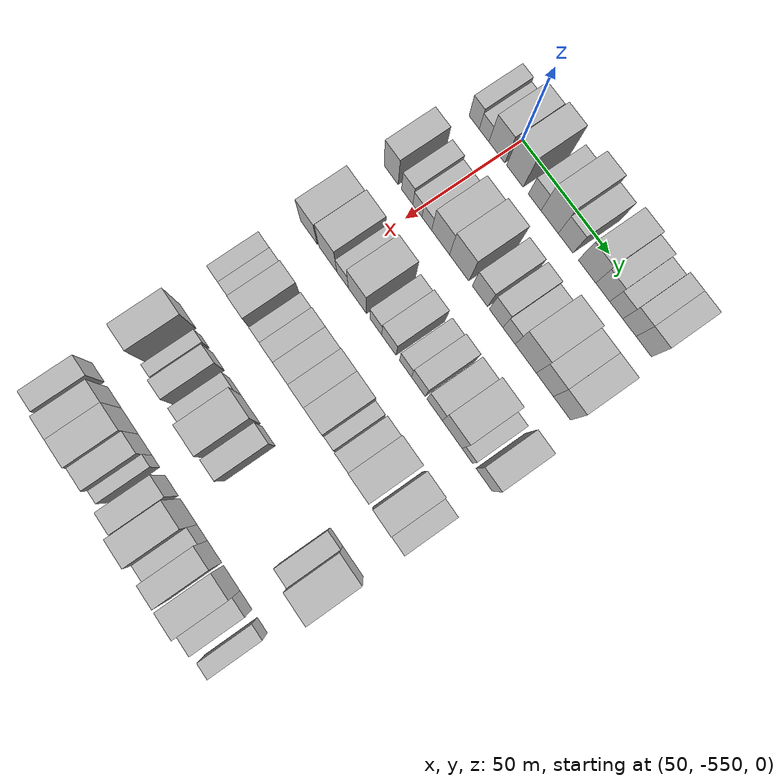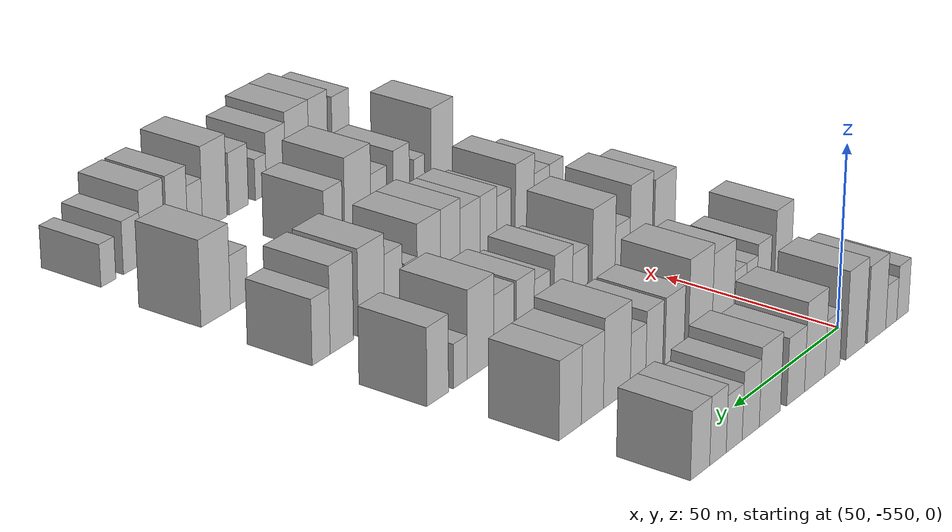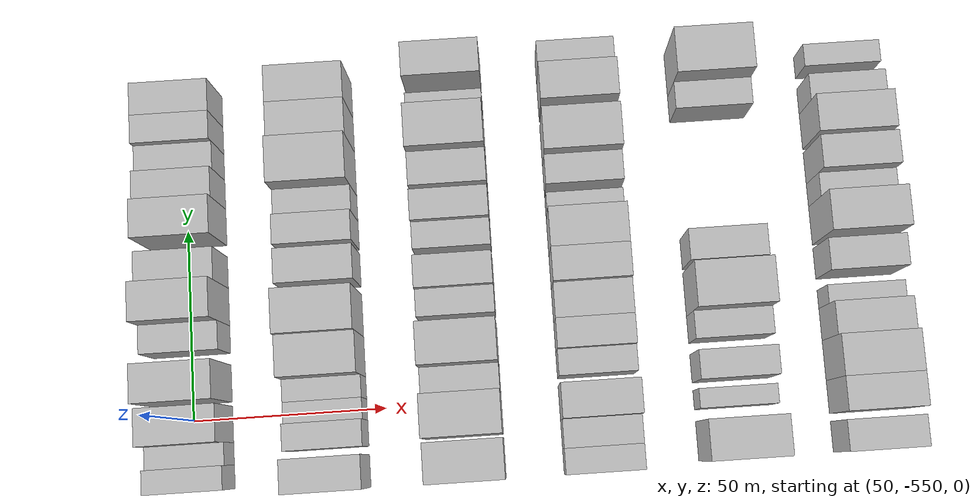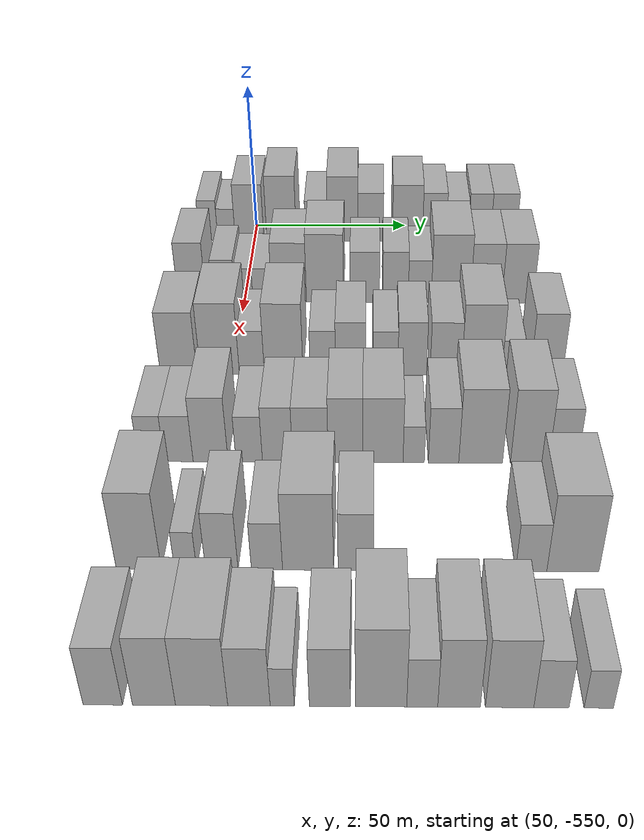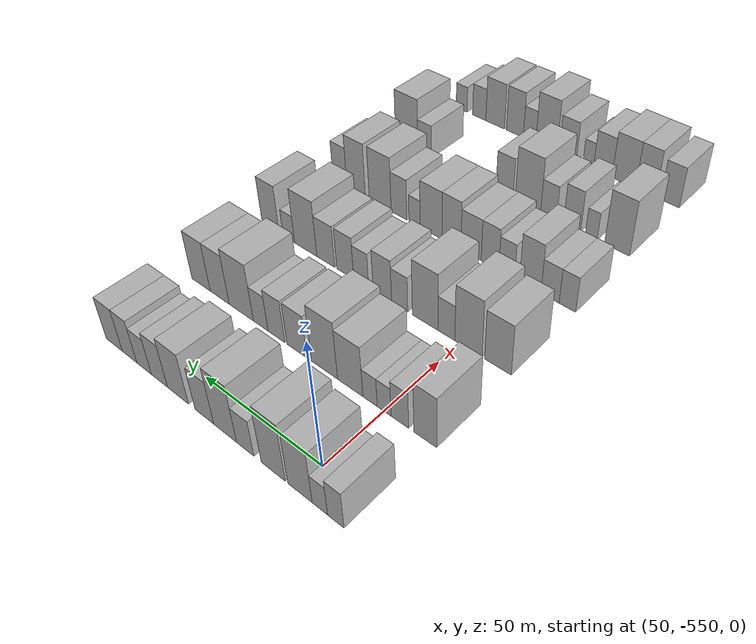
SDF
<sdf version="1.6">
 <world name="default">
  <model name="building_1">
   <static>1</static>
   <pose>50.0000 -564.9741 0 0.000000 0.000000 0.000000</pose>
   <link name="link">
    <pose>0 0 7.50 0 0 0</pose>
    <collision name="collision"><geometry><box><size>20.0000 6.0518 15.0000</size></box></geometry></collision>
    <visual name="visual">
     <cast_shadows>0</cast_shadows>
     <geometry><box><size>20.0000 6.0518 15.0000</size></box></geometry>
     <material>
      <script>
       <uri>model://HANNAS_wall/materials/scripts</uri>
       <uri>model://HANNAS_wall/materials/textures</uri>
       <name>vrc/HANNAS_wall</name>
      </script>
     </material>
    </visual>
   </link>
  </model>
  <model name="building_2">
   <static>1</static>
   <pose>50.0000 -559.0703 0 0.000000 0.000000 0.000000</pose>
   <link name="link">
    <pose>0 0 6.00 0 0 0</pose>
    <collision name="collision"><geometry><box><size>20.0000 5.7558 12.0000</size></box></geometry></collision>
    <visual name="visual">
     <cast_shadows>0</cast_shadows>
     <geometry><box><size>20.0000 5.7558 12.0000</size></box></geometry>
     <material>
      <script>
       <uri>model://HANNAS_wall/materials/scripts</uri>
       <uri>model://HANNAS_wall/materials/textures</uri>
       <name>vrc/HANNAS_wall</name>
      </script>
     </material>
    </visual>
   </link>
  </model>
  <model name="building_3">
   <static>1</static>
   <pose>50.0000 -551.4871 0 0.000000 0.000000 0.000000</pose>
   <link name="link">
    <pose>0 0 10.50 0 0 0</pose>
    <collision name="collision"><geometry><box><size>20.0000 9.4108 21.0000</size></box></geometry></collision>
    <visual name="visual">
     <cast_shadows>0</cast_shadows>
     <geometry><box><size>20.0000 9.4108 21.0000</size></box></geometry>
     <material>
      <script>
       <uri>model://HANNAS_wall/materials/scripts</uri>
       <uri>model://HANNAS_wall/materials/textures</uri>
       <name>vrc/HANNAS_wall</name>
      </script>
     </material>
    </visual>
   </link>
  </model>
  <model name="building_4">
   <static>1</static>
   <pose>50.0000 -540.9198 0 0.000000 0.000000 0.000000</pose>
   <link name="link">
    <pose>0 0 12.00 0 0 0</pose>
    <collision name="collision"><geometry><box><size>20.0000 9.7238 24.0000</size></box></geometry></collision>
    <visual name="visual">
     <cast_shadows>0</cast_shadows>
     <geometry><box><size>20.0000 9.7238 24.0000</size></box></geometry>
     <material>
      <script>
       <uri>model://HANNAS_wall/materials/scripts</uri>
       <uri>model://HANNAS_wall/materials/textures</uri>
       <name>vrc/HANNAS_wall</name>
      </script>
     </material>
    </visual>
   </link>
  </model>
  <model name="building_5">
   <static>1</static>
   <pose>50.0000 -529.4019 0 0.000000 0.000000 0.000000</pose>
   <link name="link">
    <pose>0 0 7.50 0 0 0</pose>
    <collision name="collision"><geometry><box><size>20.0000 7.3119 15.0000</size></box></geometry></collision>
    <visual name="visual">
     <cast_shadows>0</cast_shadows>
     <geometry><box><size>20.0000 7.3119 15.0000</size></box></geometry>
     <material>
      <script>
       <uri>model://HANNAS_wall/materials/scripts</uri>
       <uri>model://HANNAS_wall/materials/textures</uri>
       <name>vrc/HANNAS_wall</name>
      </script>
     </material>
    </visual>
   </link>
  </model>
  <model name="building_6">
   <static>1</static>
   <pose>50.0000 -520.7730 0 0.000000 0.000000 0.000000</pose>
   <link name="link">
    <pose>0 0 12.00 0 0 0</pose>
    <collision name="collision"><geometry><box><size>20.0000 9.9459 24.0000</size></box></geometry></collision>
    <visual name="visual">
     <cast_shadows>0</cast_shadows>
     <geometry><box><size>20.0000 9.9459 24.0000</size></box></geometry>
     <material>
      <script>
       <uri>model://HANNAS_wall/materials/scripts</uri>
       <uri>model://HANNAS_wall/materials/textures</uri>
       <name>vrc/HANNAS_wall</name>
      </script>
     </material>
    </visual>
   </link>
  </model>
  <model name="building_7">
   <static>1</static>
   <pose>50.0000 -511.5926 0 0.000000 0.000000 0.000000</pose>
   <link name="link">
    <pose>0 0 9.00 0 0 0</pose>
    <collision name="collision"><geometry><box><size>20.0000 8.4149 18.0000</size></box></geometry></collision>
    <visual name="visual">
     <cast_shadows>0</cast_shadows>
     <geometry><box><size>20.0000 8.4149 18.0000</size></box></geometry>
     <material>
      <script>
       <uri>model://HANNAS_wall/materials/scripts</uri>
       <uri>model://HANNAS_wall/materials/textures</uri>
       <name>vrc/HANNAS_wall</name>
      </script>
     </material>
    </visual>
   </link>
  </model>
  <model name="building_8">
   <static>1</static>
   <pose>50.0000 -499.4567 0 0.000000 0.000000 0.000000</pose>
   <link name="link">
    <pose>0 0 10.50 0 0 0</pose>
    <collision name="collision"><geometry><box><size>20.0000 9.8571 21.0000</size></box></geometry></collision>
    <visual name="visual">
     <cast_shadows>0</cast_shadows>
     <geometry><box><size>20.0000 9.8571 21.0000</size></box></geometry>
     <material>
      <script>
       <uri>model://HANNAS_wall/materials/scripts</uri>
       <uri>model://HANNAS_wall/materials/textures</uri>
       <name>vrc/HANNAS_wall</name>
      </script>
     </material>
    </visual>
   </link>
  </model>
  <model name="building_9">
   <static>1</static>
   <pose>50.0000 -490.6174 0 0.000000 0.000000 0.000000</pose>
   <link name="link">
    <pose>0 0 9.00 0 0 0</pose>
    <collision name="collision"><geometry><box><size>20.0000 7.8215 18.0000</size></box></geometry></collision>
    <visual name="visual">
     <cast_shadows>0</cast_shadows>
     <geometry><box><size>20.0000 7.8215 18.0000</size></box></geometry>
     <material>
      <script>
       <uri>model://HANNAS_wall/materials/scripts</uri>
       <uri>model://HANNAS_wall/materials/textures</uri>
       <name>vrc/HANNAS_wall</name>
      </script>
     </material>
    </visual>
   </link>
  </model>
  <model name="building_10">
   <static>1</static>
   <pose>50.0000 -483.0903 0 0.000000 0.000000 0.000000</pose>
   <link name="link">
    <pose>0 0 7.50 0 0 0</pose>
    <collision name="collision"><geometry><box><size>20.0000 7.2328 15.0000</size></box></geometry></collision>
    <visual name="visual">
     <cast_shadows>0</cast_shadows>
     <geometry><box><size>20.0000 7.2328 15.0000</size></box></geometry>
     <material>
      <script>
       <uri>model://HANNAS_wall/materials/scripts</uri>
       <uri>model://HANNAS_wall/materials/textures</uri>
       <name>vrc/HANNAS_wall</name>
      </script>
     </material>
    </visual>
   </link>
  </model>
  <model name="building_11">
   <static>1</static>
   <pose>50.0000 -475.7913 0 0.000000 0.000000 0.000000</pose>
   <link name="link">
    <pose>0 0 9.00 0 0 0</pose>
    <collision name="collision"><geometry><box><size>20.0000 7.3651 18.0000</size></box></geometry></collision>
    <visual name="visual">
     <cast_shadows>0</cast_shadows>
     <geometry><box><size>20.0000 7.3651 18.0000</size></box></geometry>
     <material>
      <script>
       <uri>model://HANNAS_wall/materials/scripts</uri>
       <uri>model://HANNAS_wall/materials/textures</uri>
       <name>vrc/HANNAS_wall</name>
      </script>
     </material>
    </visual>
   </link>
  </model>
  <model name="building_12">
   <static>1</static>
   <pose>50.0000 -467.8832 0 0.000000 0.000000 0.000000</pose>
   <link name="link">
    <pose>0 0 9.00 0 0 0</pose>
    <collision name="collision"><geometry><box><size>20.0000 8.4512 18.0000</size></box></geometry></collision>
    <visual name="visual">
     <cast_shadows>0</cast_shadows>
     <geometry><box><size>20.0000 8.4512 18.0000</size></box></geometry>
     <material>
      <script>
       <uri>model://HANNAS_wall/materials/scripts</uri>
       <uri>model://HANNAS_wall/materials/textures</uri>
       <name>vrc/HANNAS_wall</name>
      </script>
     </material>
    </visual>
   </link>
  </model>
  <model name="building_120">
   <static>1</static>
   <pose>85.0000 -565.7660 0 0.000000 0.000000 0.000000</pose>
   <link name="link">
    <pose>0 0 10.50 0 0 0</pose>
    <collision name="collision"><geometry><box><size>20.0000 8.4681 21.0000</size></box></geometry></collision>
    <visual name="visual">
     <cast_shadows>0</cast_shadows>
     <geometry><box><size>20.0000 8.4681 21.0000</size></box></geometry>
     <material>
      <script>
       <uri>model://HANNAS_wall/materials/scripts</uri>
       <uri>model://HANNAS_wall/materials/textures</uri>
       <name>vrc/HANNAS_wall</name>
      </script>
     </material>
    </visual>
   </link>
  </model>
  <model name="building_121">
   <static>1</static>
   <pose>85.0000 -556.1398 0 0.000000 0.000000 0.000000</pose>
   <link name="link">
    <pose>0 0 7.50 0 0 0</pose>
    <collision name="collision"><geometry><box><size>20.0000 6.7843 15.0000</size></box></geometry></collision>
    <visual name="visual">
     <cast_shadows>0</cast_shadows>
     <geometry><box><size>20.0000 6.7843 15.0000</size></box></geometry>
     <material>
      <script>
       <uri>model://HANNAS_wall/materials/scripts</uri>
       <uri>model://HANNAS_wall/materials/textures</uri>
       <name>vrc/HANNAS_wall</name>
      </script>
     </material>
    </visual>
   </link>
  </model>
  <model name="building_122">
   <static>1</static>
   <pose>85.0000 -550.0178 0 0.000000 0.000000 0.000000</pose>
   <link name="link">
    <pose>0 0 6.00 0 0 0</pose>
    <collision name="collision"><geometry><box><size>20.0000 5.4595 12.0000</size></box></geometry></collision>
    <visual name="visual">
     <cast_shadows>0</cast_shadows>
     <geometry><box><size>20.0000 5.4595 12.0000</size></box></geometry>
     <material>
      <script>
       <uri>model://HANNAS_wall/materials/scripts</uri>
       <uri>model://HANNAS_wall/materials/textures</uri>
       <name>vrc/HANNAS_wall</name>
      </script>
     </material>
    </visual>
   </link>
  </model>
  <model name="building_123">
   <static>1</static>
   <pose>85.0000 -544.4056 0 0.000000 0.000000 0.000000</pose>
   <link name="link">
    <pose>0 0 6.00 0 0 0</pose>
    <collision name="collision"><geometry><box><size>20.0000 5.7650 12.0000</size></box></geometry></collision>
    <visual name="visual">
     <cast_shadows>0</cast_shadows>
     <geometry><box><size>20.0000 5.7650 12.0000</size></box></geometry>
     <material>
      <script>
       <uri>model://HANNAS_wall/materials/scripts</uri>
       <uri>model://HANNAS_wall/materials/textures</uri>
       <name>vrc/HANNAS_wall</name>
      </script>
     </material>
    </visual>
   </link>
  </model>
  <model name="building_124">
   <static>1</static>
   <pose>85.0000 -536.2802 0 0.000000 0.000000 0.000000</pose>
   <link name="link">
    <pose>0 0 10.50 0 0 0</pose>
    <collision name="collision"><geometry><box><size>20.0000 10.4858 21.0000</size></box></geometry></collision>
    <visual name="visual">
     <cast_shadows>0</cast_shadows>
     <geometry><box><size>20.0000 10.4858 21.0000</size></box></geometry>
     <material>
      <script>
       <uri>model://HANNAS_wall/materials/scripts</uri>
       <uri>model://HANNAS_wall/materials/textures</uri>
       <name>vrc/HANNAS_wall</name>
      </script>
     </material>
    </visual>
   </link>
  </model>
  <model name="building_125">
   <static>1</static>
   <pose>85.0000 -525.4153 0 0.000000 0.000000 0.000000</pose>
   <link name="link">
    <pose>0 0 12.00 0 0 0</pose>
    <collision name="collision"><geometry><box><size>20.0000 11.2440 24.0000</size></box></geometry></collision>
    <visual name="visual">
     <cast_shadows>0</cast_shadows>
     <geometry><box><size>20.0000 11.2440 24.0000</size></box></geometry>
     <material>
      <script>
       <uri>model://HANNAS_wall/materials/scripts</uri>
       <uri>model://HANNAS_wall/materials/textures</uri>
       <name>vrc/HANNAS_wall</name>
      </script>
     </material>
    </visual>
   </link>
  </model>
  <model name="building_126">
   <static>1</static>
   <pose>85.0000 -513.3492 0 0.000000 0.000000 0.000000</pose>
   <link name="link">
    <pose>0 0 9.00 0 0 0</pose>
    <collision name="collision"><geometry><box><size>20.0000 8.8881 18.0000</size></box></geometry></collision>
    <visual name="visual">
     <cast_shadows>0</cast_shadows>
     <geometry><box><size>20.0000 8.8881 18.0000</size></box></geometry>
     <material>
      <script>
       <uri>model://HANNAS_wall/materials/scripts</uri>
       <uri>model://HANNAS_wall/materials/textures</uri>
       <name>vrc/HANNAS_wall</name>
      </script>
     </material>
    </visual>
   </link>
  </model>
  <model name="building_127">
   <static>1</static>
   <pose>85.0000 -504.0356 0 0.000000 0.000000 0.000000</pose>
   <link name="link">
    <pose>0 0 9.00 0 0 0</pose>
    <collision name="collision"><geometry><box><size>20.0000 7.7391 18.0000</size></box></geometry></collision>
    <visual name="visual">
     <cast_shadows>0</cast_shadows>
     <geometry><box><size>20.0000 7.7391 18.0000</size></box></geometry>
     <material>
      <script>
       <uri>model://HANNAS_wall/materials/scripts</uri>
       <uri>model://HANNAS_wall/materials/textures</uri>
       <name>vrc/HANNAS_wall</name>
      </script>
     </material>
    </visual>
   </link>
  </model>
  <model name="building_128">
   <static>1</static>
   <pose>85.0000 -496.6850 0 0.000000 0.000000 0.000000</pose>
   <link name="link">
    <pose>0 0 7.50 0 0 0</pose>
    <collision name="collision"><geometry><box><size>20.0000 6.9622 15.0000</size></box></geometry></collision>
    <visual name="visual">
     <cast_shadows>0</cast_shadows>
     <geometry><box><size>20.0000 6.9622 15.0000</size></box></geometry>
     <material>
      <script>
       <uri>model://HANNAS_wall/materials/scripts</uri>
       <uri>model://HANNAS_wall/materials/textures</uri>
       <name>vrc/HANNAS_wall</name>
      </script>
     </material>
    </visual>
   </link>
  </model>
  <model name="building_129">
   <static>1</static>
   <pose>85.0000 -487.2741 0 0.000000 0.000000 0.000000</pose>
   <link name="link">
    <pose>0 0 12.00 0 0 0</pose>
    <collision name="collision"><geometry><box><size>20.0000 11.8596 24.0000</size></box></geometry></collision>
    <visual name="visual">
     <cast_shadows>0</cast_shadows>
     <geometry><box><size>20.0000 11.8596 24.0000</size></box></geometry>
     <material>
      <script>
       <uri>model://HANNAS_wall/materials/scripts</uri>
       <uri>model://HANNAS_wall/materials/textures</uri>
       <name>vrc/HANNAS_wall</name>
      </script>
     </material>
    </visual>
   </link>
  </model>
  <model name="building_130">
   <static>1</static>
   <pose>85.0000 -476.5541 0 0.000000 0.000000 0.000000</pose>
   <link name="link">
    <pose>0 0 10.50 0 0 0</pose>
    <collision name="collision"><geometry><box><size>20.0000 9.5804 21.0000</size></box></geometry></collision>
    <visual name="visual">
     <cast_shadows>0</cast_shadows>
     <geometry><box><size>20.0000 9.5804 21.0000</size></box></geometry>
     <material>
      <script>
       <uri>model://HANNAS_wall/materials/scripts</uri>
       <uri>model://HANNAS_wall/materials/textures</uri>
       <name>vrc/HANNAS_wall</name>
      </script>
     </material>
    </visual>
   </link>
  </model>
  <model name="building_131">
   <static>1</static>
   <pose>85.0000 -466.9929 0 0.000000 0.000000 0.000000</pose>
   <link name="link">
    <pose>0 0 10.50 0 0 0</pose>
    <collision name="collision"><geometry><box><size>20.0000 9.5418 21.0000</size></box></geometry></collision>
    <visual name="visual">
     <cast_shadows>0</cast_shadows>
     <geometry><box><size>20.0000 9.5418 21.0000</size></box></geometry>
     <material>
      <script>
       <uri>model://HANNAS_wall/materials/scripts</uri>
       <uri>model://HANNAS_wall/materials/textures</uri>
       <name>vrc/HANNAS_wall</name>
      </script>
     </material>
    </visual>
   </link>
  </model>
  <model name="building_256">
   <static>1</static>
   <pose>120.0000 -564.9015 0 0.000000 0.000000 0.000000</pose>
   <link name="link">
    <pose>0 0 10.50 0 0 0</pose>
    <collision name="collision"><geometry><box><size>20.0000 10.1969 21.0000</size></box></geometry></collision>
    <visual name="visual">
     <cast_shadows>0</cast_shadows>
     <geometry><box><size>20.0000 10.1969 21.0000</size></box></geometry>
     <material>
      <script>
       <uri>model://HANNAS_wall/materials/scripts</uri>
       <uri>model://HANNAS_wall/materials/textures</uri>
       <name>vrc/HANNAS_wall</name>
      </script>
     </material>
    </visual>
   </link>
  </model>
  <model name="building_257">
   <static>1</static>
   <pose>120.0000 -553.4024 0 0.000000 0.000000 0.000000</pose>
   <link name="link">
    <pose>0 0 12.00 0 0 0</pose>
    <collision name="collision"><geometry><box><size>20.0000 10.8014 24.0000</size></box></geometry></collision>
    <visual name="visual">
     <cast_shadows>0</cast_shadows>
     <geometry><box><size>20.0000 10.8014 24.0000</size></box></geometry>
     <material>
      <script>
       <uri>model://HANNAS_wall/materials/scripts</uri>
       <uri>model://HANNAS_wall/materials/textures</uri>
       <name>vrc/HANNAS_wall</name>
      </script>
     </material>
    </visual>
   </link>
  </model>
  <model name="building_258">
   <static>1</static>
   <pose>120.0000 -544.5300 0 0.000000 0.000000 0.000000</pose>
   <link name="link">
    <pose>0 0 7.50 0 0 0</pose>
    <collision name="collision"><geometry><box><size>20.0000 6.9434 15.0000</size></box></geometry></collision>
    <visual name="visual">
     <cast_shadows>0</cast_shadows>
     <geometry><box><size>20.0000 6.9434 15.0000</size></box></geometry>
     <material>
      <script>
       <uri>model://HANNAS_wall/materials/scripts</uri>
       <uri>model://HANNAS_wall/materials/textures</uri>
       <name>vrc/HANNAS_wall</name>
      </script>
     </material>
    </visual>
   </link>
  </model>
  <model name="building_259">
   <static>1</static>
   <pose>120.0000 -535.6911 0 0.000000 0.000000 0.000000</pose>
   <link name="link">
    <pose>0 0 12.00 0 0 0</pose>
    <collision name="collision"><geometry><box><size>20.0000 10.7343 24.0000</size></box></geometry></collision>
    <visual name="visual">
     <cast_shadows>0</cast_shadows>
     <geometry><box><size>20.0000 10.7343 24.0000</size></box></geometry>
     <material>
      <script>
       <uri>model://HANNAS_wall/materials/scripts</uri>
       <uri>model://HANNAS_wall/materials/textures</uri>
       <name>vrc/HANNAS_wall</name>
      </script>
     </material>
    </visual>
   </link>
  </model>
  <model name="building_260">
   <static>1</static>
   <pose>120.0000 -524.7993 0 0.000000 0.000000 0.000000</pose>
   <link name="link">
    <pose>0 0 7.50 0 0 0</pose>
    <collision name="collision"><geometry><box><size>20.0000 7.0494 15.0000</size></box></geometry></collision>
    <visual name="visual">
     <cast_shadows>0</cast_shadows>
     <geometry><box><size>20.0000 7.0494 15.0000</size></box></geometry>
     <material>
      <script>
       <uri>model://HANNAS_wall/materials/scripts</uri>
       <uri>model://HANNAS_wall/materials/textures</uri>
       <name>vrc/HANNAS_wall</name>
      </script>
     </material>
    </visual>
   </link>
  </model>
  <model name="building_261">
   <static>1</static>
   <pose>120.0000 -517.1263 0 0.000000 0.000000 0.000000</pose>
   <link name="link">
    <pose>0 0 9.00 0 0 0</pose>
    <collision name="collision"><geometry><box><size>20.0000 8.2966 18.0000</size></box></geometry></collision>
    <visual name="visual">
     <cast_shadows>0</cast_shadows>
     <geometry><box><size>20.0000 8.2966 18.0000</size></box></geometry>
     <material>
      <script>
       <uri>model://HANNAS_wall/materials/scripts</uri>
       <uri>model://HANNAS_wall/materials/textures</uri>
       <name>vrc/HANNAS_wall</name>
      </script>
     </material>
    </visual>
   </link>
  </model>
  <model name="building_262">
   <static>1</static>
   <pose>120.0000 -507.5064 0 0.000000 0.000000 0.000000</pose>
   <link name="link">
    <pose>0 0 7.50 0 0 0</pose>
    <collision name="collision"><geometry><box><size>20.0000 6.9430 15.0000</size></box></geometry></collision>
    <visual name="visual">
     <cast_shadows>0</cast_shadows>
     <geometry><box><size>20.0000 6.9430 15.0000</size></box></geometry>
     <material>
      <script>
       <uri>model://HANNAS_wall/materials/scripts</uri>
       <uri>model://HANNAS_wall/materials/textures</uri>
       <name>vrc/HANNAS_wall</name>
      </script>
     </material>
    </visual>
   </link>
  </model>
  <model name="building_263">
   <static>1</static>
   <pose>120.0000 -500.0608 0 0.000000 0.000000 0.000000</pose>
   <link name="link">
    <pose>0 0 9.00 0 0 0</pose>
    <collision name="collision"><geometry><box><size>20.0000 7.9483 18.0000</size></box></geometry></collision>
    <visual name="visual">
     <cast_shadows>0</cast_shadows>
     <geometry><box><size>20.0000 7.9483 18.0000</size></box></geometry>
     <material>
      <script>
       <uri>model://HANNAS_wall/materials/scripts</uri>
       <uri>model://HANNAS_wall/materials/textures</uri>
       <name>vrc/HANNAS_wall</name>
      </script>
     </material>
    </visual>
   </link>
  </model>
  <model name="building_264">
   <static>1</static>
   <pose>120.0000 -490.7387 0 0.000000 0.000000 0.000000</pose>
   <link name="link">
    <pose>0 0 9.00 0 0 0</pose>
    <collision name="collision"><geometry><box><size>20.0000 8.6958 18.0000</size></box></geometry></collision>
    <visual name="visual">
     <cast_shadows>0</cast_shadows>
     <geometry><box><size>20.0000 8.6958 18.0000</size></box></geometry>
     <material>
      <script>
       <uri>model://HANNAS_wall/materials/scripts</uri>
       <uri>model://HANNAS_wall/materials/textures</uri>
       <name>vrc/HANNAS_wall</name>
      </script>
     </material>
    </visual>
   </link>
  </model>
  <model name="building_265">
   <static>1</static>
   <pose>120.0000 -480.7982 0 0.000000 0.000000 0.000000</pose>
   <link name="link">
    <pose>0 0 12.00 0 0 0</pose>
    <collision name="collision"><geometry><box><size>20.0000 11.1853 24.0000</size></box></geometry></collision>
    <visual name="visual">
     <cast_shadows>0</cast_shadows>
     <geometry><box><size>20.0000 11.1853 24.0000</size></box></geometry>
     <material>
      <script>
       <uri>model://HANNAS_wall/materials/scripts</uri>
       <uri>model://HANNAS_wall/materials/textures</uri>
       <name>vrc/HANNAS_wall</name>
      </script>
     </material>
    </visual>
   </link>
  </model>
  <model name="building_266">
   <static>1</static>
   <pose>120.0000 -472.2410 0 0.000000 0.000000 0.000000</pose>
   <link name="link">
    <pose>0 0 6.00 0 0 0</pose>
    <collision name="collision"><geometry><box><size>20.0000 5.9292 12.0000</size></box></geometry></collision>
    <visual name="visual">
     <cast_shadows>0</cast_shadows>
     <geometry><box><size>20.0000 5.9292 12.0000</size></box></geometry>
     <material>
      <script>
       <uri>model://HANNAS_wall/materials/scripts</uri>
       <uri>model://HANNAS_wall/materials/textures</uri>
       <name>vrc/HANNAS_wall</name>
      </script>
     </material>
    </visual>
   </link>
  </model>
  <model name="building_267">
   <static>1</static>
   <pose>120.0000 -462.8033 0 0.000000 0.000000 0.000000</pose>
   <link name="link">
    <pose>0 0 10.50 0 0 0</pose>
    <collision name="collision"><geometry><box><size>20.0000 8.9462 21.0000</size></box></geometry></collision>
    <visual name="visual">
     <cast_shadows>0</cast_shadows>
     <geometry><box><size>20.0000 8.9462 21.0000</size></box></geometry>
     <material>
      <script>
       <uri>model://HANNAS_wall/materials/scripts</uri>
       <uri>model://HANNAS_wall/materials/textures</uri>
       <name>vrc/HANNAS_wall</name>
      </script>
     </material>
    </visual>
   </link>
  </model>
  <model name="building_382">
   <static>1</static>
   <pose>155.0000 -566.7504 0 0.000000 0.000000 0.000000</pose>
   <link name="link">
    <pose>0 0 7.50 0 0 0</pose>
    <collision name="collision"><geometry><box><size>20.0000 6.4992 15.0000</size></box></geometry></collision>
    <visual name="visual">
     <cast_shadows>0</cast_shadows>
     <geometry><box><size>20.0000 6.4992 15.0000</size></box></geometry>
     <material>
      <script>
       <uri>model://HANNAS_wall/materials/scripts</uri>
       <uri>model://HANNAS_wall/materials/textures</uri>
       <name>vrc/HANNAS_wall</name>
      </script>
     </material>
    </visual>
   </link>
  </model>
  <model name="building_383">
   <static>1</static>
   <pose>155.0000 -559.8747 0 0.000000 0.000000 0.000000</pose>
   <link name="link">
    <pose>0 0 7.50 0 0 0</pose>
    <collision name="collision"><geometry><box><size>20.0000 7.2522 15.0000</size></box></geometry></collision>
    <visual name="visual">
     <cast_shadows>0</cast_shadows>
     <geometry><box><size>20.0000 7.2522 15.0000</size></box></geometry>
     <material>
      <script>
       <uri>model://HANNAS_wall/materials/scripts</uri>
       <uri>model://HANNAS_wall/materials/textures</uri>
       <name>vrc/HANNAS_wall</name>
      </script>
     </material>
    </visual>
   </link>
  </model>
  <model name="building_384">
   <static>1</static>
   <pose>155.0000 -551.8441 0 0.000000 0.000000 0.000000</pose>
   <link name="link">
    <pose>0 0 10.50 0 0 0</pose>
    <collision name="collision"><geometry><box><size>20.0000 8.8089 21.0000</size></box></geometry></collision>
    <visual name="visual">
     <cast_shadows>0</cast_shadows>
     <geometry><box><size>20.0000 8.8089 21.0000</size></box></geometry>
     <material>
      <script>
       <uri>model://HANNAS_wall/materials/scripts</uri>
       <uri>model://HANNAS_wall/materials/textures</uri>
       <name>vrc/HANNAS_wall</name>
      </script>
     </material>
    </visual>
   </link>
  </model>
  <model name="building_385">
   <static>1</static>
   <pose>155.0000 -542.1084 0 0.000000 0.000000 0.000000</pose>
   <link name="link">
    <pose>0 0 7.50 0 0 0</pose>
    <collision name="collision"><geometry><box><size>20.0000 6.6627 15.0000</size></box></geometry></collision>
    <visual name="visual">
     <cast_shadows>0</cast_shadows>
     <geometry><box><size>20.0000 6.6627 15.0000</size></box></geometry>
     <material>
      <script>
       <uri>model://HANNAS_wall/materials/scripts</uri>
       <uri>model://HANNAS_wall/materials/textures</uri>
       <name>vrc/HANNAS_wall</name>
      </script>
     </material>
    </visual>
   </link>
  </model>
  <model name="building_386">
   <static>1</static>
   <pose>155.0000 -534.9783 0 0.000000 0.000000 0.000000</pose>
   <link name="link">
    <pose>0 0 9.00 0 0 0</pose>
    <collision name="collision"><geometry><box><size>20.0000 7.5975 18.0000</size></box></geometry></collision>
    <visual name="visual">
     <cast_shadows>0</cast_shadows>
     <geometry><box><size>20.0000 7.5975 18.0000</size></box></geometry>
     <material>
      <script>
       <uri>model://HANNAS_wall/materials/scripts</uri>
       <uri>model://HANNAS_wall/materials/textures</uri>
       <name>vrc/HANNAS_wall</name>
      </script>
     </material>
    </visual>
   </link>
  </model>
  <model name="building_387">
   <static>1</static>
   <pose>155.0000 -526.6995 0 0.000000 0.000000 0.000000</pose>
   <link name="link">
    <pose>0 0 9.00 0 0 0</pose>
    <collision name="collision"><geometry><box><size>20.0000 8.9601 18.0000</size></box></geometry></collision>
    <visual name="visual">
     <cast_shadows>0</cast_shadows>
     <geometry><box><size>20.0000 8.9601 18.0000</size></box></geometry>
     <material>
      <script>
       <uri>model://HANNAS_wall/materials/scripts</uri>
       <uri>model://HANNAS_wall/materials/textures</uri>
       <name>vrc/HANNAS_wall</name>
      </script>
     </material>
    </visual>
   </link>
  </model>
  <model name="building_388">
   <static>1</static>
   <pose>155.0000 -517.8881 0 0.000000 0.000000 0.000000</pose>
   <link name="link">
    <pose>0 0 10.50 0 0 0</pose>
    <collision name="collision"><geometry><box><size>20.0000 8.6628 21.0000</size></box></geometry></collision>
    <visual name="visual">
     <cast_shadows>0</cast_shadows>
     <geometry><box><size>20.0000 8.6628 21.0000</size></box></geometry>
     <material>
      <script>
       <uri>model://HANNAS_wall/materials/scripts</uri>
       <uri>model://HANNAS_wall/materials/textures</uri>
       <name>vrc/HANNAS_wall</name>
      </script>
     </material>
    </visual>
   </link>
  </model>
  <model name="building_389">
   <static>1</static>
   <pose>155.0000 -508.4815 0 0.000000 0.000000 0.000000</pose>
   <link name="link">
    <pose>0 0 10.50 0 0 0</pose>
    <collision name="collision"><geometry><box><size>20.0000 10.1504 21.0000</size></box></geometry></collision>
    <visual name="visual">
     <cast_shadows>0</cast_shadows>
     <geometry><box><size>20.0000 10.1504 21.0000</size></box></geometry>
     <material>
      <script>
       <uri>model://HANNAS_wall/materials/scripts</uri>
       <uri>model://HANNAS_wall/materials/textures</uri>
       <name>vrc/HANNAS_wall</name>
      </script>
     </material>
    </visual>
   </link>
  </model>
  <model name="building_390">
   <static>1</static>
   <pose>155.0000 -500.7237 0 0.000000 0.000000 0.000000</pose>
   <link name="link">
    <pose>0 0 6.00 0 0 0</pose>
    <collision name="collision"><geometry><box><size>20.0000 5.3651 12.0000</size></box></geometry></collision>
    <visual name="visual">
     <cast_shadows>0</cast_shadows>
     <geometry><box><size>20.0000 5.3651 12.0000</size></box></geometry>
     <material>
      <script>
       <uri>model://HANNAS_wall/materials/scripts</uri>
       <uri>model://HANNAS_wall/materials/textures</uri>
       <name>vrc/HANNAS_wall</name>
      </script>
     </material>
    </visual>
   </link>
  </model>
  <model name="building_391">
   <static>1</static>
   <pose>155.0000 -493.2195 0 0.000000 0.000000 0.000000</pose>
   <link name="link">
    <pose>0 0 9.00 0 0 0</pose>
    <collision name="collision"><geometry><box><size>20.0000 7.6432 18.0000</size></box></geometry></collision>
    <visual name="visual">
     <cast_shadows>0</cast_shadows>
     <geometry><box><size>20.0000 7.6432 18.0000</size></box></geometry>
     <material>
      <script>
       <uri>model://HANNAS_wall/materials/scripts</uri>
       <uri>model://HANNAS_wall/materials/textures</uri>
       <name>vrc/HANNAS_wall</name>
      </script>
     </material>
    </visual>
   </link>
  </model>
  <model name="building_392">
   <static>1</static>
   <pose>155.0000 -483.8917 0 0.000000 0.000000 0.000000</pose>
   <link name="link">
    <pose>0 0 12.00 0 0 0</pose>
    <collision name="collision"><geometry><box><size>20.0000 11.0124 24.0000</size></box></geometry></collision>
    <visual name="visual">
     <cast_shadows>0</cast_shadows>
     <geometry><box><size>20.0000 11.0124 24.0000</size></box></geometry>
     <material>
      <script>
       <uri>model://HANNAS_wall/materials/scripts</uri>
       <uri>model://HANNAS_wall/materials/textures</uri>
       <name>vrc/HANNAS_wall</name>
      </script>
     </material>
    </visual>
   </link>
  </model>
  <model name="building_393">
   <static>1</static>
   <pose>155.0000 -471.5803 0 0.000000 0.000000 0.000000</pose>
   <link name="link">
    <pose>0 0 12.00 0 0 0</pose>
    <collision name="collision"><geometry><box><size>20.0000 9.6104 24.0000</size></box></geometry></collision>
    <visual name="visual">
     <cast_shadows>0</cast_shadows>
     <geometry><box><size>20.0000 9.6104 24.0000</size></box></geometry>
     <material>
      <script>
       <uri>model://HANNAS_wall/materials/scripts</uri>
       <uri>model://HANNAS_wall/materials/textures</uri>
       <name>vrc/HANNAS_wall</name>
      </script>
     </material>
    </visual>
   </link>
  </model>
  <model name="building_394">
   <static>1</static>
   <pose>155.0000 -463.1319 0 0.000000 0.000000 0.000000</pose>
   <link name="link">
    <pose>0 0 9.00 0 0 0</pose>
    <collision name="collision"><geometry><box><size>20.0000 7.2863 18.0000</size></box></geometry></collision>
    <visual name="visual">
     <cast_shadows>0</cast_shadows>
     <geometry><box><size>20.0000 7.2863 18.0000</size></box></geometry>
     <material>
      <script>
       <uri>model://HANNAS_wall/materials/scripts</uri>
       <uri>model://HANNAS_wall/materials/textures</uri>
       <name>vrc/HANNAS_wall</name>
      </script>
     </material>
    </visual>
   </link>
  </model>
  <model name="building_515">
   <static>1</static>
   <pose>190.0000 -563.9112 0 0.000000 0.000000 0.000000</pose>
   <link name="link">
    <pose>0 0 12.00 0 0 0</pose>
    <collision name="collision"><geometry><box><size>20.0000 10.1776 24.0000</size></box></geometry></collision>
    <visual name="visual">
     <cast_shadows>0</cast_shadows>
     <geometry><box><size>20.0000 10.1776 24.0000</size></box></geometry>
     <material>
      <script>
       <uri>model://HANNAS_wall/materials/scripts</uri>
       <uri>model://HANNAS_wall/materials/textures</uri>
       <name>vrc/HANNAS_wall</name>
      </script>
     </material>
    </visual>
   </link>
  </model>
  <model name="building_516">
   <static>1</static>
   <pose>190.0000 -553.3271 0 0.000000 0.000000 0.000000</pose>
   <link name="link">
    <pose>0 0 6.00 0 0 0</pose>
    <collision name="collision"><geometry><box><size>20.0000 4.9906 12.0000</size></box></geometry></collision>
    <visual name="visual">
     <cast_shadows>0</cast_shadows>
     <geometry><box><size>20.0000 4.9906 12.0000</size></box></geometry>
     <material>
      <script>
       <uri>model://HANNAS_wall/materials/scripts</uri>
       <uri>model://HANNAS_wall/materials/textures</uri>
       <name>vrc/HANNAS_wall</name>
      </script>
     </material>
    </visual>
   </link>
  </model>
  <model name="building_517">
   <static>1</static>
   <pose>190.0000 -545.1506 0 0.000000 0.000000 0.000000</pose>
   <link name="link">
    <pose>0 0 9.00 0 0 0</pose>
    <collision name="collision"><geometry><box><size>20.0000 7.3623 18.0000</size></box></geometry></collision>
    <visual name="visual">
     <cast_shadows>0</cast_shadows>
     <geometry><box><size>20.0000 7.3623 18.0000</size></box></geometry>
     <material>
      <script>
       <uri>model://HANNAS_wall/materials/scripts</uri>
       <uri>model://HANNAS_wall/materials/textures</uri>
       <name>vrc/HANNAS_wall</name>
      </script>
     </material>
    </visual>
   </link>
  </model>
  <model name="building_518">
   <static>1</static>
   <pose>190.0000 -534.9436 0 0.000000 0.000000 0.000000</pose>
   <link name="link">
    <pose>0 0 7.50 0 0 0</pose>
    <collision name="collision"><geometry><box><size>20.0000 7.0516 15.0000</size></box></geometry></collision>
    <visual name="visual">
     <cast_shadows>0</cast_shadows>
     <geometry><box><size>20.0000 7.0516 15.0000</size></box></geometry>
     <material>
      <script>
       <uri>model://HANNAS_wall/materials/scripts</uri>
       <uri>model://HANNAS_wall/materials/textures</uri>
       <name>vrc/HANNAS_wall</name>
      </script>
     </material>
    </visual>
   </link>
  </model>
  <model name="building_519">
   <static>1</static>
   <pose>190.0000 -525.6472 0 0.000000 0.000000 0.000000</pose>
   <link name="link">
    <pose>0 0 12.00 0 0 0</pose>
    <collision name="collision"><geometry><box><size>20.0000 11.5412 24.0000</size></box></geometry></collision>
    <visual name="visual">
     <cast_shadows>0</cast_shadows>
     <geometry><box><size>20.0000 11.5412 24.0000</size></box></geometry>
     <material>
      <script>
       <uri>model://HANNAS_wall/materials/scripts</uri>
       <uri>model://HANNAS_wall/materials/textures</uri>
       <name>vrc/HANNAS_wall</name>
      </script>
     </material>
    </visual>
   </link>
  </model>
  <model name="building_520">
   <static>1</static>
   <pose>190.0000 -514.8941 0 0.000000 0.000000 0.000000</pose>
   <link name="link">
    <pose>0 0 9.00 0 0 0</pose>
    <collision name="collision"><geometry><box><size>20.0000 7.9650 18.0000</size></box></geometry></collision>
    <visual name="visual">
     <cast_shadows>0</cast_shadows>
     <geometry><box><size>20.0000 7.9650 18.0000</size></box></geometry>
     <material>
      <script>
       <uri>model://HANNAS_wall/materials/scripts</uri>
       <uri>model://HANNAS_wall/materials/textures</uri>
       <name>vrc/HANNAS_wall</name>
      </script>
     </material>
    </visual>
   </link>
  </model>
  <model name="building_521">
   <static>1</static>
   <pose>190.0000 -475.3537 0 0.000000 0.000000 0.000000</pose>
   <link name="link">
    <pose>0 0 7.50 0 0 0</pose>
    <collision name="collision"><geometry><box><size>20.0000 7.0386 15.0000</size></box></geometry></collision>
    <visual name="visual">
     <cast_shadows>0</cast_shadows>
     <geometry><box><size>20.0000 7.0386 15.0000</size></box></geometry>
     <material>
      <script>
       <uri>model://HANNAS_wall/materials/scripts</uri>
       <uri>model://HANNAS_wall/materials/textures</uri>
       <name>vrc/HANNAS_wall</name>
      </script>
     </material>
    </visual>
   </link>
  </model>
  <model name="building_522">
   <static>1</static>
   <pose>190.0000 -465.9612 0 0.000000 0.000000 0.000000</pose>
   <link name="link">
    <pose>0 0 12.00 0 0 0</pose>
    <collision name="collision"><geometry><box><size>20.0000 11.7465 24.0000</size></box></geometry></collision>
    <visual name="visual">
     <cast_shadows>0</cast_shadows>
     <geometry><box><size>20.0000 11.7465 24.0000</size></box></geometry>
     <material>
      <script>
       <uri>model://HANNAS_wall/materials/scripts</uri>
       <uri>model://HANNAS_wall/materials/textures</uri>
       <name>vrc/HANNAS_wall</name>
      </script>
     </material>
    </visual>
   </link>
  </model>
  <model name="building_636">
   <static>1</static>
   <pose>225.0000 -565.0655 0 0.000000 0.000000 0.000000</pose>
   <link name="link">
    <pose>0 0 9.00 0 0 0</pose>
    <collision name="collision"><geometry><box><size>20.0000 7.8690 18.0000</size></box></geometry></collision>
    <visual name="visual">
     <cast_shadows>0</cast_shadows>
     <geometry><box><size>20.0000 7.8690 18.0000</size></box></geometry>
     <material>
      <script>
       <uri>model://HANNAS_wall/materials/scripts</uri>
       <uri>model://HANNAS_wall/materials/textures</uri>
       <name>vrc/HANNAS_wall</name>
      </script>
     </material>
    </visual>
   </link>
  </model>
  <model name="building_637">
   <static>1</static>
   <pose>225.0000 -554.8287 0 0.000000 0.000000 0.000000</pose>
   <link name="link">
    <pose>0 0 10.50 0 0 0</pose>
    <collision name="collision"><geometry><box><size>20.0000 8.6047 21.0000</size></box></geometry></collision>
    <visual name="visual">
     <cast_shadows>0</cast_shadows>
     <geometry><box><size>20.0000 8.6047 21.0000</size></box></geometry>
     <material>
      <script>
       <uri>model://HANNAS_wall/materials/scripts</uri>
       <uri>model://HANNAS_wall/materials/textures</uri>
       <name>vrc/HANNAS_wall</name>
      </script>
     </material>
    </visual>
   </link>
  </model>
  <model name="building_638">
   <static>1</static>
   <pose>225.0000 -545.2997 0 0.000000 0.000000 0.000000</pose>
   <link name="link">
    <pose>0 0 10.50 0 0 0</pose>
    <collision name="collision"><geometry><box><size>20.0000 10.4534 21.0000</size></box></geometry></collision>
    <visual name="visual">
     <cast_shadows>0</cast_shadows>
     <geometry><box><size>20.0000 10.4534 21.0000</size></box></geometry>
     <material>
      <script>
       <uri>model://HANNAS_wall/materials/scripts</uri>
       <uri>model://HANNAS_wall/materials/textures</uri>
       <name>vrc/HANNAS_wall</name>
      </script>
     </material>
    </visual>
   </link>
  </model>
  <model name="building_639">
   <static>1</static>
   <pose>225.0000 -535.8393 0 0.000000 0.000000 0.000000</pose>
   <link name="link">
    <pose>0 0 9.00 0 0 0</pose>
    <collision name="collision"><geometry><box><size>20.0000 8.4674 18.0000</size></box></geometry></collision>
    <visual name="visual">
     <cast_shadows>0</cast_shadows>
     <geometry><box><size>20.0000 8.4674 18.0000</size></box></geometry>
     <material>
      <script>
       <uri>model://HANNAS_wall/materials/scripts</uri>
       <uri>model://HANNAS_wall/materials/textures</uri>
       <name>vrc/HANNAS_wall</name>
      </script>
     </material>
    </visual>
   </link>
  </model>
  <model name="building_640">
   <static>1</static>
   <pose>225.0000 -529.1913 0 0.000000 0.000000 0.000000</pose>
   <link name="link">
    <pose>0 0 6.00 0 0 0</pose>
    <collision name="collision"><geometry><box><size>20.0000 4.8286 12.0000</size></box></geometry></collision>
    <visual name="visual">
     <cast_shadows>0</cast_shadows>
     <geometry><box><size>20.0000 4.8286 12.0000</size></box></geometry>
     <material>
      <script>
       <uri>model://HANNAS_wall/materials/scripts</uri>
       <uri>model://HANNAS_wall/materials/textures</uri>
       <name>vrc/HANNAS_wall</name>
      </script>
     </material>
    </visual>
   </link>
  </model>
  <model name="building_641">
   <static>1</static>
   <pose>225.0000 -519.6868 0 0.000000 0.000000 0.000000</pose>
   <link name="link">
    <pose>0 0 9.00 0 0 0</pose>
    <collision name="collision"><geometry><box><size>20.0000 8.1804 18.0000</size></box></geometry></collision>
    <visual name="visual">
     <cast_shadows>0</cast_shadows>
     <geometry><box><size>20.0000 8.1804 18.0000</size></box></geometry>
     <material>
      <script>
       <uri>model://HANNAS_wall/materials/scripts</uri>
       <uri>model://HANNAS_wall/materials/textures</uri>
       <name>vrc/HANNAS_wall</name>
      </script>
     </material>
    </visual>
   </link>
  </model>
  <model name="building_642">
   <static>1</static>
   <pose>225.0000 -509.4744 0 0.000000 0.000000 0.000000</pose>
   <link name="link">
    <pose>0 0 12.00 0 0 0</pose>
    <collision name="collision"><geometry><box><size>20.0000 10.2444 24.0000</size></box></geometry></collision>
    <visual name="visual">
     <cast_shadows>0</cast_shadows>
     <geometry><box><size>20.0000 10.2444 24.0000</size></box></geometry>
     <material>
      <script>
       <uri>model://HANNAS_wall/materials/scripts</uri>
       <uri>model://HANNAS_wall/materials/textures</uri>
       <name>vrc/HANNAS_wall</name>
      </script>
     </material>
    </visual>
   </link>
  </model>
  <model name="building_643">
   <static>1</static>
   <pose>225.0000 -501.2615 0 0.000000 0.000000 0.000000</pose>
   <link name="link">
    <pose>0 0 7.50 0 0 0</pose>
    <collision name="collision"><geometry><box><size>20.0000 6.1813 15.0000</size></box></geometry></collision>
    <visual name="visual">
     <cast_shadows>0</cast_shadows>
     <geometry><box><size>20.0000 6.1813 15.0000</size></box></geometry>
     <material>
      <script>
       <uri>model://HANNAS_wall/materials/scripts</uri>
       <uri>model://HANNAS_wall/materials/textures</uri>
       <name>vrc/HANNAS_wall</name>
      </script>
     </material>
    </visual>
   </link>
  </model>
  <model name="building_644">
   <static>1</static>
   <pose>225.0000 -493.9154 0 0.000000 0.000000 0.000000</pose>
   <link name="link">
    <pose>0 0 10.50 0 0 0</pose>
    <collision name="collision"><geometry><box><size>20.0000 8.5109 21.0000</size></box></geometry></collision>
    <visual name="visual">
     <cast_shadows>0</cast_shadows>
     <geometry><box><size>20.0000 8.5109 21.0000</size></box></geometry>
     <material>
      <script>
       <uri>model://HANNAS_wall/materials/scripts</uri>
       <uri>model://HANNAS_wall/materials/textures</uri>
       <name>vrc/HANNAS_wall</name>
      </script>
     </material>
    </visual>
   </link>
  </model>
  <model name="building_645">
   <static>1</static>
   <pose>225.0000 -483.8359 0 0.000000 0.000000 0.000000</pose>
   <link name="link">
    <pose>0 0 10.50 0 0 0</pose>
    <collision name="collision"><geometry><box><size>20.0000 9.6481 21.0000</size></box></geometry></collision>
    <visual name="visual">
     <cast_shadows>0</cast_shadows>
     <geometry><box><size>20.0000 9.6481 21.0000</size></box></geometry>
     <material>
      <script>
       <uri>model://HANNAS_wall/materials/scripts</uri>
       <uri>model://HANNAS_wall/materials/textures</uri>
       <name>vrc/HANNAS_wall</name>
      </script>
     </material>
    </visual>
   </link>
  </model>
  <model name="building_646">
   <static>1</static>
   <pose>225.0000 -475.5013 0 0.000000 0.000000 0.000000</pose>
   <link name="link">
    <pose>0 0 7.50 0 0 0</pose>
    <collision name="collision"><geometry><box><size>20.0000 7.0212 15.0000</size></box></geometry></collision>
    <visual name="visual">
     <cast_shadows>0</cast_shadows>
     <geometry><box><size>20.0000 7.0212 15.0000</size></box></geometry>
     <material>
      <script>
       <uri>model://HANNAS_wall/materials/scripts</uri>
       <uri>model://HANNAS_wall/materials/textures</uri>
       <name>vrc/HANNAS_wall</name>
      </script>
     </material>
    </visual>
   </link>
  </model>
  <model name="building_647">
   <static>1</static>
   <pose>225.0000 -466.0670 0 0.000000 0.000000 0.000000</pose>
   <link name="link">
    <pose>0 0 6.00 0 0 0</pose>
    <collision name="collision"><geometry><box><size>20.0000 5.8473 12.0000</size></box></geometry></collision>
    <visual name="visual">
     <cast_shadows>0</cast_shadows>
     <geometry><box><size>20.0000 5.8473 12.0000</size></box></geometry>
     <material>
      <script>
       <uri>model://HANNAS_wall/materials/scripts</uri>
       <uri>model://HANNAS_wall/materials/textures</uri>
       <name>vrc/HANNAS_wall</name>
      </script>
     </material>
    </visual>
   </link>
  </model>
 </world>
</sdf>
